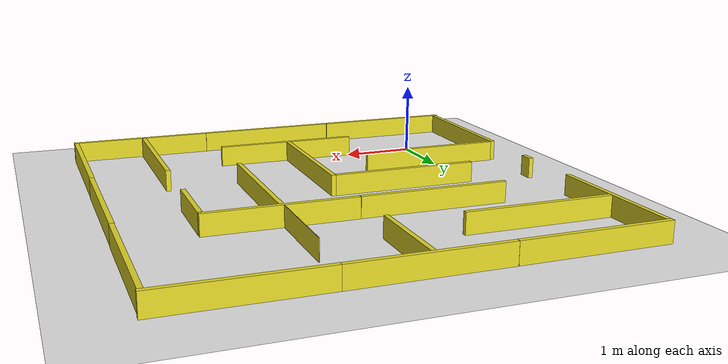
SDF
<sdf version="1.7">
 <world name="default">
  <model name="ground_plane">
   <static>1</static>
   <link name="link">
    <collision name="collision">
     <geometry><plane><normal>0 0 1</normal><size>20 20</size></plane></geometry>
     <surface>
      <contact><collide_bitmask>65535</collide_bitmask></contact>
      <friction><ode><mu>100</mu><mu2>50</mu2></ode></friction>
     </surface>
    </collision>
    <visual name="visual">
     <cast_shadows>0</cast_shadows>
     <geometry><plane><normal>0 0 1</normal><size>20 20</size></plane></geometry>
     <material>
      <script><uri>file://media/materials/scripts/gazebo.material</uri><name>Gazebo/White</name></script>
     </material>
    </visual>
   </link>
  </model>
  <gravity>0 0 -9.8</gravity>
  <magnetic_field>6e-06 2.3e-05 -4.2e-05</magnetic_field>
  <atmosphere type="adiabatic"/>
  <physics type="ode">
   <max_step_size>0.001</max_step_size>
   <real_time_factor>1</real_time_factor>
   <real_time_update_rate>1000</real_time_update_rate>
  </physics>
  <scene><ambient>0.4 0.4 0.4 1</ambient><background>0.7 0.7 0.7 1</background><shadows>1</shadows></scene>
  <spherical_coordinates>
   <surface_model>EARTH_WGS84</surface_model>
   <latitude_deg>0</latitude_deg>
   <longitude_deg>0</longitude_deg>
   <elevation>0</elevation>
   <heading_deg>0</heading_deg>
  </spherical_coordinates>
  <light name="sun" type="directional">
   <pose>13.0104 0.905764 10 0 -0 0</pose>
   <diffuse>0.8 0.8 0.8 1</diffuse>
   <specular>0.2 0.2 0.2 1</specular>
   <attenuation>
    <range>1000</range>
    <constant>0.9</constant>
    <linear>0.01</linear>
    <quadratic>0.001</quadratic>
   </attenuation>
   <direction>-0.5 0.1 -0.9</direction>
   <spot><inner_angle>0</inner_angle><outer_angle>0</outer_angle><falloff>0</falloff></spot>
  </light>
  <model name="unit_box_1">
   <pose>2.00278 -1.01885 0.14245 0 -2.2e-05 -1.56731</pose>
   <static>1</static>
   <link name="link">
    <inertial>
     <mass>1</mass>
     <inertia>
      <ixx>0.166667</ixx>
      <ixy>0</ixy>
      <ixz>0</ixz>
      <iyy>0.166667</iyy>
      <iyz>0</iyz>
      <izz>0.166667</izz>
     </inertia>
    </inertial>
    <collision name="collision"><geometry><box><size>0.063652 2.00615 0.284898</size></box></geometry></collision>
    <visual name="visual">
     <geometry><box><size>0.063652 2.00615 0.284898</size></box></geometry>
     <material>
      <script><name>Gazebo/DarkYellow</name><uri>file://media/materials/scripts/gazebo.material</uri></script>
     </material>
    </visual>
   </link>
  </model>
  <model name="unit_box_12">
   <pose>4.01074 -1.01179 0.142392 -5.7e-05 -1e-06 -1.56965</pose>
   <static>1</static>
   <link name="link">
    <inertial>
     <mass>1</mass>
     <inertia>
      <ixx>0.166667</ixx>
      <ixy>0</ixy>
      <ixz>0</ixz>
      <iyy>0.166667</iyy>
      <iyz>0</iyz>
      <izz>0.166667</izz>
     </inertia>
    </inertial>
    <collision name="collision"><geometry><box><size>0.063652 2.00615 0.284898</size></box></geometry></collision>
    <visual name="visual">
     <geometry><box><size>0.063652 2.00615 0.284898</size></box></geometry>
     <material>
      <script><name>Gazebo/DarkYellow</name><uri>file://media/materials/scripts/gazebo.material</uri></script>
     </material>
    </visual>
   </link>
  </model>
  <model name="unit_box_2">
   <pose>-0.95786 0.01758 0.142392 5.7e-05 1e-06 3.14006</pose>
   <static>1</static>
   <link name="link">
    <inertial>
     <mass>1</mass>
     <inertia>
      <ixx>0.166667</ixx>
      <ixy>0</ixy>
      <ixz>0</ixz>
      <iyy>0.166667</iyy>
      <iyz>0</iyz>
      <izz>0.166667</izz>
     </inertia>
    </inertial>
    <collision name="collision"><geometry><box><size>0.063652 2.00615 0.284898</size></box></geometry></collision>
    <visual name="visual">
     <geometry><box><size>0.063652 2.00615 0.284898</size></box></geometry>
     <material>
      <script><name>Gazebo/DarkYellow</name><uri>file://media/materials/scripts/gazebo.material</uri></script>
     </material>
    </visual>
   </link>
  </model>
  <model name="unit_box_3">
   <static>1</static>
   <pose>-0.954768 2.02386 0.142449 0 -9e-06 3.14013</pose>
   <link name="link">
    <inertial>
     <mass>1</mass>
     <inertia>
      <ixx>0.166667</ixx>
      <ixy>0</ixy>
      <ixz>0</ixz>
      <iyy>0.166667</iyy>
      <iyz>0</iyz>
      <izz>0.166667</izz>
     </inertia>
    </inertial>
    <collision name="collision">
     <geometry><box><size>0.063652 0.200615 0.284898</size></box></geometry>
    </collision>
    <visual name="visual">
     <geometry><box><size>0.063652 0.200615 0.284898</size></box></geometry>
     <material>
      <script><name>Gazebo/DarkYellow</name><uri>file://media/materials/scripts/gazebo.material</uri></script>
     </material>
    </visual>
   </link>
  </model>
  <model name="unit_box_6">
   <pose>-0.954655 4.03008 0.142449 0 -6e-06 -3.14118</pose>
   <static>1</static>
   <link name="link">
    <inertial>
     <mass>1</mass>
     <inertia>
      <ixx>0.166667</ixx>
      <ixy>0</ixy>
      <ixz>0</ixz>
      <iyy>0.166667</iyy>
      <iyz>0</iyz>
      <izz>0.166667</izz>
     </inertia>
    </inertial>
    <collision name="collision"><geometry><box><size>0.063652 2.00615 0.284898</size></box></geometry></collision>
    <visual name="visual">
     <geometry><box><size>0.063652 2.00615 0.284898</size></box></geometry>
     <material>
      <script><name>Gazebo/DarkYellow</name><uri>file://media/materials/scripts/gazebo.material</uri></script>
     </material>
    </visual>
   </link>
  </model>
  <model name="unit_box_4">
   <pose>4.98291 0.034596 0.14245 0 -2.9e-05 -3.14093</pose>
   <static>1</static>
   <link name="link">
    <inertial>
     <mass>1</mass>
     <inertia>
      <ixx>0.166667</ixx>
      <ixy>0</ixy>
      <ixz>0</ixz>
      <iyy>0.166667</iyy>
      <iyz>0</iyz>
      <izz>0.166667</izz>
     </inertia>
    </inertial>
    <collision name="collision"><geometry><box><size>0.063652 2.00615 0.284898</size></box></geometry></collision>
    <visual name="visual">
     <geometry><box><size>0.063652 2.00615 0.284898</size></box></geometry>
     <material>
      <script><name>Gazebo/DarkYellow</name><uri>file://media/materials/scripts/gazebo.material</uri></script>
     </material>
    </visual>
   </link>
  </model>
  <model name="unit_box_7">
   <pose>4.98769 2.04078 0.142449 0 -5e-06 -3.14113</pose>
   <static>1</static>
   <link name="link">
    <inertial>
     <mass>1</mass>
     <inertia>
      <ixx>0.166667</ixx>
      <ixy>0</ixy>
      <ixz>0</ixz>
      <iyy>0.166667</iyy>
      <iyz>0</iyz>
      <izz>0.166667</izz>
     </inertia>
    </inertial>
    <collision name="collision"><geometry><box><size>0.063652 2.00615 0.284898</size></box></geometry></collision>
    <visual name="visual">
     <geometry><box><size>0.063652 2.00615 0.284898</size></box></geometry>
     <material>
      <script><name>Gazebo/DarkYellow</name><uri>file://media/materials/scripts/gazebo.material</uri></script>
     </material>
    </visual>
   </link>
  </model>
  <model name="unit_box_8">
   <pose>4.99172 4.04697 0.142449 0 -1.4e-05 -3.14086</pose>
   <static>1</static>
   <link name="link">
    <inertial>
     <mass>1</mass>
     <inertia>
      <ixx>0.166667</ixx>
      <ixy>0</ixy>
      <ixz>0</ixz>
      <iyy>0.166667</iyy>
      <iyz>0</iyz>
      <izz>0.166667</izz>
     </inertia>
    </inertial>
    <collision name="collision"><geometry><box><size>0.063652 2.00615 0.284898</size></box></geometry></collision>
    <visual name="visual">
     <geometry><box><size>0.063652 2.00615 0.284898</size></box></geometry>
     <material>
      <script><name>Gazebo/DarkYellow</name><uri>file://media/materials/scripts/gazebo.material</uri></script>
     </material>
    </visual>
   </link>
  </model>
  <model name="unit_box_9">
   <pose>0.015324 5.07287 0.142392 -5.7e-05 1e-06 -1.56385</pose>
   <static>1</static>
   <link name="link">
    <inertial>
     <mass>1</mass>
     <inertia>
      <ixx>0.166667</ixx>
      <ixy>0</ixy>
      <ixz>0</ixz>
      <iyy>0.166667</iyy>
      <iyz>0</iyz>
      <izz>0.166667</izz>
     </inertia>
    </inertial>
    <collision name="collision"><geometry><box><size>0.063652 2.00615 0.284898</size></box></geometry></collision>
    <visual name="visual">
     <geometry><box><size>0.063652 2.00615 0.284898</size></box></geometry>
     <material>
      <script><name>Gazebo/DarkYellow</name><uri>file://media/materials/scripts/gazebo.material</uri></script>
     </material>
    </visual>
   </link>
  </model>
  <model name="unit_box_10">
   <pose>2.02375 5.08444 0.142392 5.7e-05 -1e-06 -1.56835</pose>
   <static>1</static>
   <link name="link">
    <inertial>
     <mass>1</mass>
     <inertia>
      <ixx>0.166667</ixx>
      <ixy>0</ixy>
      <ixz>0</ixz>
      <iyy>0.166667</iyy>
      <iyz>0</iyz>
      <izz>0.166667</izz>
     </inertia>
    </inertial>
    <collision name="collision"><geometry><box><size>0.063652 2.00615 0.284898</size></box></geometry></collision>
    <visual name="visual">
     <geometry><box><size>0.063652 2.00615 0.284898</size></box></geometry>
     <material>
      <script><name>Gazebo/DarkYellow</name><uri>file://media/materials/scripts/gazebo.material</uri></script>
     </material>
    </visual>
   </link>
  </model>
  <model name="unit_box_11">
   <pose>4.03006 5.08394 0.142392 5.7e-05 1e-06 -1.57279</pose>
   <static>1</static>
   <link name="link">
    <inertial>
     <mass>1</mass>
     <inertia>
      <ixx>0.166667</ixx>
      <ixy>0</ixy>
      <ixz>0</ixz>
      <iyy>0.166667</iyy>
      <iyz>0</iyz>
      <izz>0.166667</izz>
     </inertia>
    </inertial>
    <collision name="collision"><geometry><box><size>0.063652 2.00615 0.284898</size></box></geometry></collision>
    <visual name="visual">
     <geometry><box><size>0.063652 2.00615 0.284898</size></box></geometry>
     <material>
      <script><name>Gazebo/DarkYellow</name><uri>file://media/materials/scripts/gazebo.material</uri></script>
     </material>
    </visual>
   </link>
  </model>
  <model name="unit_box_13">
   <pose>-0.007471 -1.02089 0.14245 0 2.2e-05 -1.57277</pose>
   <static>1</static>
   <link name="link">
    <inertial>
     <mass>1</mass>
     <inertia>
      <ixx>0.166667</ixx>
      <ixy>0</ixy>
      <ixz>0</ixz>
      <iyy>0.166667</iyy>
      <iyz>0</iyz>
      <izz>0.166667</izz>
     </inertia>
    </inertial>
    <collision name="collision"><geometry><box><size>0.063652 2.00615 0.284898</size></box></geometry></collision>
    <visual name="visual">
     <geometry><box><size>0.063652 2.00615 0.284898</size></box></geometry>
     <material>
      <script><name>Gazebo/DarkYellow</name><uri>file://media/materials/scripts/gazebo.material</uri></script>
     </material>
    </visual>
   </link>
  </model>
  <model name="unit_box_14">
   <pose>0.091888 1.0132 0.142449 0 1e-06 -1.5731</pose>
   <static>1</static>
   <link name="link">
    <inertial>
     <mass>1</mass>
     <inertia>
      <ixx>0.166667</ixx>
      <ixy>0</ixy>
      <ixz>0</ixz>
      <iyy>0.166667</iyy>
      <iyz>0</iyz>
      <izz>0.166667</izz>
     </inertia>
    </inertial>
    <collision name="collision"><geometry><box><size>0.063652 2.00615 0.284898</size></box></geometry></collision>
    <visual name="visual">
     <geometry><box><size>0.063652 2.00615 0.284898</size></box></geometry>
     <material>
      <script><name>Gazebo/DarkYellow</name><uri>file://media/materials/scripts/gazebo.material</uri></script>
     </material>
    </visual>
   </link>
  </model>
  <model name="unit_box_15">
   <pose>1.98875 -0.025192 0.142392 -5.7e-05 1e-06 -1.57298</pose>
   <static>1</static>
   <link name="link">
    <inertial>
     <mass>1</mass>
     <inertia>
      <ixx>0.166667</ixx>
      <ixy>0</ixy>
      <ixz>0</ixz>
      <iyy>0.166667</iyy>
      <iyz>0</iyz>
      <izz>0.166667</izz>
     </inertia>
    </inertial>
    <collision name="collision"><geometry><box><size>0.063652 2.00615 0.284898</size></box></geometry></collision>
    <visual name="visual">
     <geometry><box><size>0.063652 2.00615 0.284898</size></box></geometry>
     <material>
      <script><name>Gazebo/DarkYellow</name><uri>file://media/materials/scripts/gazebo.material</uri></script>
     </material>
    </visual>
   </link>
  </model>
  <model name="unit_box_16">
   <pose>1.96492 1.00985 0.14245 0 -2.1e-05 3.13743</pose>
   <static>1</static>
   <link name="link">
    <inertial>
     <mass>1</mass>
     <inertia>
      <ixx>0.166667</ixx>
      <ixy>0</ixy>
      <ixz>0</ixz>
      <iyy>0.166667</iyy>
      <iyz>0</iyz>
      <izz>0.166667</izz>
     </inertia>
    </inertial>
    <collision name="collision"><geometry><box><size>0.063652 2.00615 0.284898</size></box></geometry></collision>
    <visual name="visual">
     <geometry><box><size>0.063652 2.00615 0.284898</size></box></geometry>
     <material>
      <script><name>Gazebo/DarkYellow</name><uri>file://media/materials/scripts/gazebo.material</uri></script>
     </material>
    </visual>
   </link>
  </model>
  <model name="unit_box_17">
   <pose>0.933947 1.98582 0.142392 5.7e-05 1e-06 -1.57293</pose>
   <static>1</static>
   <link name="link">
    <inertial>
     <mass>1</mass>
     <inertia>
      <ixx>0.166667</ixx>
      <ixy>0</ixy>
      <ixz>0</ixz>
      <iyy>0.166667</iyy>
      <iyz>0</iyz>
      <izz>0.166667</izz>
     </inertia>
    </inertial>
    <collision name="collision"><geometry><box><size>0.063652 2.00615 0.284898</size></box></geometry></collision>
    <visual name="visual">
     <geometry><box><size>0.063652 2.00615 0.284898</size></box></geometry>
     <material>
      <script><name>Gazebo/DarkYellow</name><uri>file://media/materials/scripts/gazebo.material</uri></script>
     </material>
    </visual>
   </link>
  </model>
  <model name="unit_box_18">
   <pose>0.987922 3.01183 0.142392 5.7e-05 1e-06 -1.57293</pose>
   <static>1</static>
   <link name="link">
    <inertial>
     <mass>1</mass>
     <inertia>
      <ixx>0.166667</ixx>
      <ixy>0</ixy>
      <ixz>0</ixz>
      <iyy>0.166667</iyy>
      <iyz>0</iyz>
      <izz>0.166667</izz>
     </inertia>
    </inertial>
    <collision name="collision"><geometry><box><size>0.063652 2.00615 0.284898</size></box></geometry></collision>
    <visual name="visual">
     <geometry><box><size>0.063652 2.00615 0.284898</size></box></geometry>
     <material>
      <script><name>Gazebo/DarkYellow</name><uri>file://media/materials/scripts/gazebo.material</uri></script>
     </material>
    </visual>
   </link>
  </model>
  <model name="unit_box_19">
   <pose>2.99935 3.01086 0.142392 5.7e-05 1e-06 -1.57293</pose>
   <static>1</static>
   <link name="link">
    <inertial>
     <mass>1</mass>
     <inertia>
      <ixx>0.166667</ixx>
      <ixy>0</ixy>
      <ixz>0</ixz>
      <iyy>0.166667</iyy>
      <iyz>0</iyz>
      <izz>0.166667</izz>
     </inertia>
    </inertial>
    <collision name="collision"><geometry><box><size>0.063652 2.00615 0.284898</size></box></geometry></collision>
    <visual name="visual">
     <geometry><box><size>0.063652 2.00615 0.284898</size></box></geometry>
     <material>
      <script><name>Gazebo/DarkYellow</name><uri>file://media/materials/scripts/gazebo.material</uri></script>
     </material>
    </visual>
   </link>
  </model>
  <model name="unit_box_20">
   <pose>3.98063 0.033134 0.142391 1e-06 -5.7e-05 -0.002134</pose>
   <static>1</static>
   <link name="link">
    <inertial>
     <mass>1</mass>
     <inertia>
      <ixx>0.166667</ixx>
      <ixy>0</ixy>
      <ixz>0</ixz>
      <iyy>0.166667</iyy>
      <iyz>0</iyz>
      <izz>0.166667</izz>
     </inertia>
    </inertial>
    <collision name="collision"><geometry><box><size>0.063652 2.00615 0.284898</size></box></geometry></collision>
    <visual name="visual">
     <geometry><box><size>0.063652 2.00615 0.284898</size></box></geometry>
     <material>
      <script><name>Gazebo/DarkYellow</name><uri>file://media/materials/scripts/gazebo.material</uri></script>
     </material>
    </visual>
   </link>
  </model>
  <model name="unit_box_21">
   <pose>2.98929 1.98092 0.142391 1e-06 -5.7e-05 -0.002134</pose>
   <static>1</static>
   <link name="link">
    <inertial>
     <mass>1</mass>
     <inertia>
      <ixx>0.166667</ixx>
      <ixy>0</ixy>
      <ixz>0</ixz>
      <iyy>0.166667</iyy>
      <iyz>0</iyz>
      <izz>0.166667</izz>
     </inertia>
    </inertial>
    <collision name="collision"><geometry><box><size>0.063652 2.00615 0.284898</size></box></geometry></collision>
    <visual name="visual">
     <geometry><box><size>0.063652 2.00615 0.284898</size></box></geometry>
     <material>
      <script><name>Gazebo/DarkYellow</name><uri>file://media/materials/scripts/gazebo.material</uri></script>
     </material>
    </visual>
   </link>
  </model>
  <model name="unit_box_22">
   <pose>3.97402 2.47007 0.142391 1e-06 -5.7e-05 -0.002134</pose>
   <static>1</static>
   <link name="link">
    <inertial>
     <mass>1</mass>
     <inertia>
      <ixx>0.166667</ixx>
      <ixy>0</ixy>
      <ixz>0</ixz>
      <iyy>0.166667</iyy>
      <iyz>0</iyz>
      <izz>0.166667</izz>
     </inertia>
    </inertial>
    <collision name="collision"><geometry><box><size>0.063652 1 0.284898</size></box></geometry></collision>
    <visual name="visual">
     <geometry><box><size>0.063652 1 0.284898</size></box></geometry>
     <material>
      <script><name>Gazebo/DarkYellow</name><uri>file://media/materials/scripts/gazebo.material</uri></script>
     </material>
    </visual>
   </link>
  </model>
  <model name="unit_box_19_clone">
   <pose>0.083164 4.0061 0.142392 5.7e-05 1e-06 -1.57293</pose>
   <static>1</static>
   <link name="link">
    <inertial>
     <mass>1</mass>
     <inertia>
      <ixx>0.166667</ixx>
      <ixy>0</ixy>
      <ixz>0</ixz>
      <iyy>0.166667</iyy>
      <iyz>0</iyz>
      <izz>0.166667</izz>
     </inertia>
    </inertial>
    <collision name="collision"><geometry><box><size>0.063652 2.00615 0.284898</size></box></geometry></collision>
    <visual name="visual">
     <geometry><box><size>0.063652 2.00615 0.284898</size></box></geometry>
     <material>
      <script><name>Gazebo/DarkYellow</name><uri>file://media/materials/scripts/gazebo.material</uri></script>
     </material>
    </visual>
   </link>
  </model>
  <model name="unit_box_22_clone">
   <pose>1.99589 4.43195 0.142391 1e-06 -5.7e-05 -0.002134</pose>
   <static>1</static>
   <link name="link">
    <inertial>
     <mass>1</mass>
     <inertia>
      <ixx>0.166667</ixx>
      <ixy>0</ixy>
      <ixz>0</ixz>
      <iyy>0.166667</iyy>
      <iyz>0</iyz>
      <izz>0.166667</izz>
     </inertia>
    </inertial>
    <collision name="collision"><geometry><box><size>0.063652 1.25 0.284898</size></box></geometry></collision>
    <visual name="visual">
     <geometry><box><size>0.063652 1.25 0.284898</size></box></geometry>
     <material>
      <script><name>Gazebo/DarkYellow</name><uri>file://media/materials/scripts/gazebo.material</uri></script>
     </material>
    </visual>
   </link>
  </model>
  <model name="unit_box_22_clone_clone">
   <pose>2.97533 3.6666 0.142391 1e-06 -5.7e-05 -0.002134</pose>
   <static>1</static>
   <link name="link">
    <inertial>
     <mass>1</mass>
     <inertia>
      <ixx>0.166667</ixx>
      <ixy>0</ixy>
      <ixz>0</ixz>
      <iyy>0.166667</iyy>
      <iyz>0</iyz>
      <izz>0.166667</izz>
     </inertia>
    </inertial>
    <collision name="collision"><geometry><box><size>0.0063652 1.25 0.284898</size></box></geometry></collision>
    <visual name="visual">
     <geometry><box><size>0.0063652 1.25 0.284898</size></box></geometry>
     <material>
      <script><name>Gazebo/DarkYellow</name><uri>file://media/materials/scripts/gazebo.material</uri></script>
     </material>
    </visual>
   </link>
  </model>
 </world>
</sdf>
